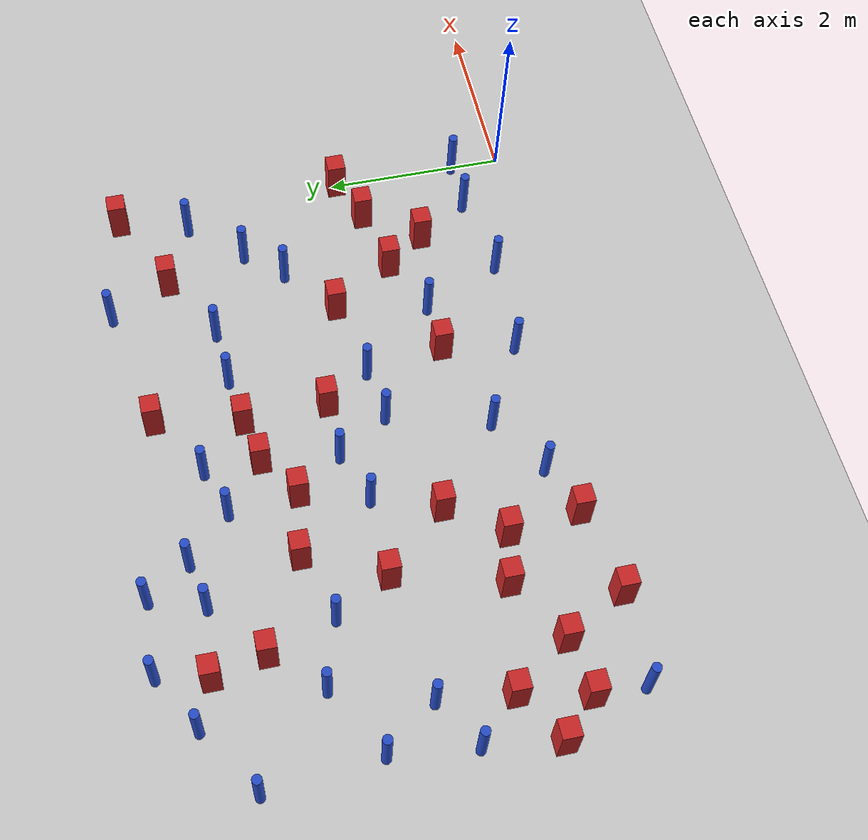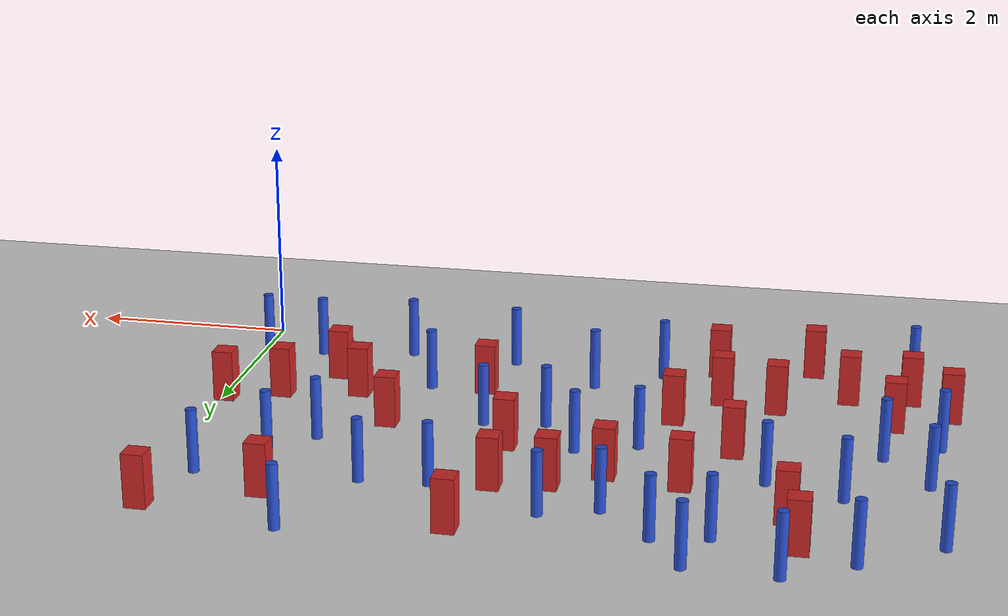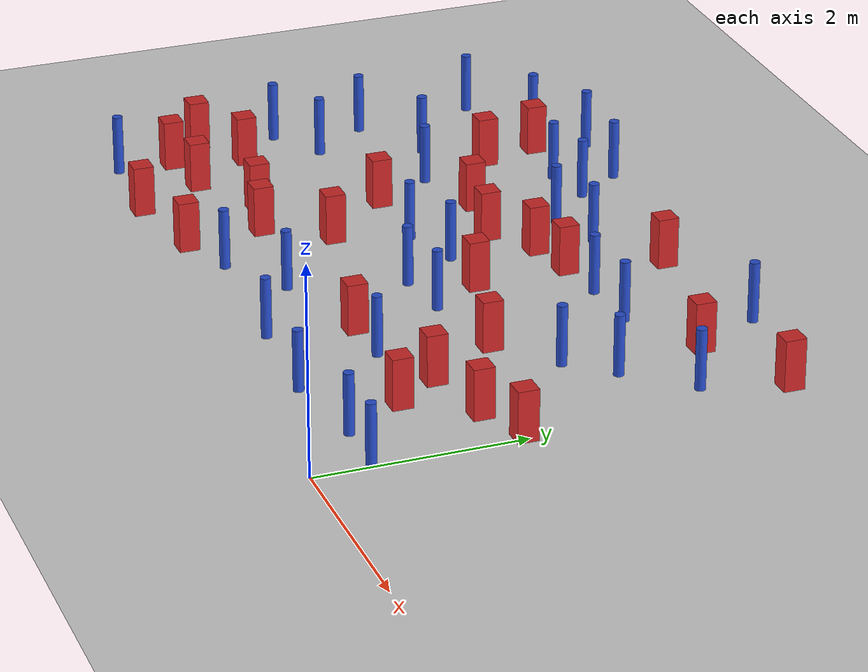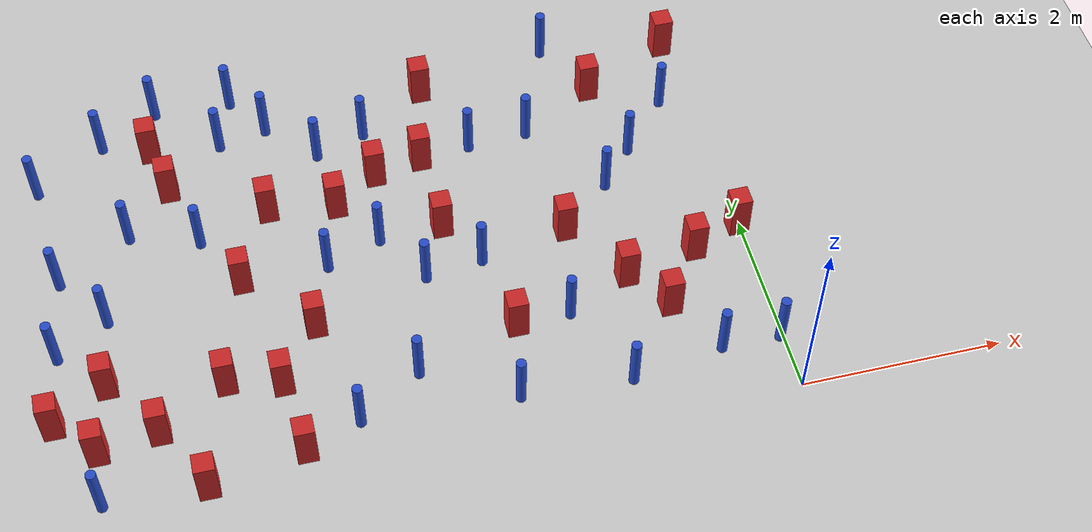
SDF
<sdf version="1.6">
 <world name="default">
  <model name="ground_plane">
   <static>1</static>
   <link name="link">
    <collision name="collision">
     <geometry><plane><normal>0 0 1</normal><size>100 100</size></plane></geometry>
     <surface><friction><ode><mu>100</mu><mu2>50</mu2></ode></friction></surface>
    </collision>
    <visual name="visual">
     <cast_shadows>0</cast_shadows>
     <geometry><plane><normal>0 0 1</normal><size>100 100</size></plane></geometry>
     <material>
      <ambient>1.0 1.0 1.0 1.0</ambient>
      <diffuse>0.8 0.8 0.8 1.0</diffuse>
      <specular>0.01 0.01 0.01 1.000000</specular>
     </material>
    </visual>
   </link>
  </model>
  <model name="square_post_obstacle3">
   <static>true</static>
   <pose>-4.62492804359 3.22909375096 1.91545236811e-07 -7.35059704564e-06 1.12565212e-07 2.39332434364e-05</pose>
   <link name="link">
    <pose>0 0 0.25 0 -0 0</pose>
    <inertial>
     <mass>100</mass>
     <inertia>
      <ixx>0.166667</ixx>
      <ixy>0</ixy>
      <ixz>0</ixz>
      <iyy>0.166667</iyy>
      <iyz>0</iyz>
      <izz>0.166667</izz>
     </inertia>
    </inertial>
    <collision name="collision"><geometry><box><size>.2 .2 .5</size></box></geometry></collision>
    <visual name="visual">
     <geometry><box><size>.2 .2 .5</size></box></geometry>
     <material>
      <script><name>Gazebo/Red</name><uri>file://media/materials/scripts/gazebo.material</uri></script>
     </material>
    </visual>
   </link>
  </model>
  <model name="square_post_obstacle11">
   <static>true</static>
   <pose>-2.98088389689 3.53646595872 1.91545236811e-07 -7.35059704564e-06 1.12565212e-07 2.39332434364e-05</pose>
   <link name="link">
    <pose>0 0 0.25 0 -0 0</pose>
    <inertial>
     <mass>100</mass>
     <inertia>
      <ixx>0.166667</ixx>
      <ixy>0</ixy>
      <ixz>0</ixz>
      <iyy>0.166667</iyy>
      <iyz>0</iyz>
      <izz>0.166667</izz>
     </inertia>
    </inertial>
    <collision name="collision"><geometry><box><size>.2 .2 .5</size></box></geometry></collision>
    <visual name="visual">
     <geometry><box><size>.2 .2 .5</size></box></geometry>
     <material>
      <script><name>Gazebo/Red</name><uri>file://media/materials/scripts/gazebo.material</uri></script>
     </material>
    </visual>
   </link>
  </model>
  <model name="square_post_obstacle15">
   <static>true</static>
   <pose>-2.49304595082 1.27367761904 1.91545236811e-07 -7.35059704564e-06 1.12565212e-07 2.39332434364e-05</pose>
   <link name="link">
    <pose>0 0 0.25 0 -0 0</pose>
    <inertial>
     <mass>100</mass>
     <inertia>
      <ixx>0.166667</ixx>
      <ixy>0</ixy>
      <ixz>0</ixz>
      <iyy>0.166667</iyy>
      <iyz>0</iyz>
      <izz>0.166667</izz>
     </inertia>
    </inertial>
    <collision name="collision"><geometry><box><size>.2 .2 .5</size></box></geometry></collision>
    <visual name="visual">
     <geometry><box><size>.2 .2 .5</size></box></geometry>
     <material>
      <script><name>Gazebo/Red</name><uri>file://media/materials/scripts/gazebo.material</uri></script>
     </material>
    </visual>
   </link>
  </model>
  <model name="square_post_obstacle17">
   <static>true</static>
   <pose>-5.63733042722 0.186093524573 1.91545236811e-07 -7.35059704564e-06 1.12565212e-07 2.39332434364e-05</pose>
   <link name="link">
    <pose>0 0 0.25 0 -0 0</pose>
    <inertial>
     <mass>100</mass>
     <inertia>
      <ixx>0.166667</ixx>
      <ixy>0</ixy>
      <ixz>0</ixz>
      <iyy>0.166667</iyy>
      <iyz>0</iyz>
      <izz>0.166667</izz>
     </inertia>
    </inertial>
    <collision name="collision"><geometry><box><size>.2 .2 .5</size></box></geometry></collision>
    <visual name="visual">
     <geometry><box><size>.2 .2 .5</size></box></geometry>
     <material>
      <script><name>Gazebo/Red</name><uri>file://media/materials/scripts/gazebo.material</uri></script>
     </material>
    </visual>
   </link>
  </model>
  <model name="square_post_obstacle35">
   <static>true</static>
   <pose>-5.32573867616 1.25916689682 1.91545236811e-07 -7.35059704564e-06 1.12565212e-07 2.39332434364e-05</pose>
   <link name="link">
    <pose>0 0 0.25 0 -0 0</pose>
    <inertial>
     <mass>100</mass>
     <inertia>
      <ixx>0.166667</ixx>
      <ixy>0</ixy>
      <ixz>0</ixz>
      <iyy>0.166667</iyy>
      <iyz>0</iyz>
      <izz>0.166667</izz>
     </inertia>
    </inertial>
    <collision name="collision"><geometry><box><size>.2 .2 .5</size></box></geometry></collision>
    <visual name="visual">
     <geometry><box><size>.2 .2 .5</size></box></geometry>
     <material>
      <script><name>Gazebo/Red</name><uri>file://media/materials/scripts/gazebo.material</uri></script>
     </material>
    </visual>
   </link>
  </model>
  <model name="pole_obstacle38">
   <static>true</static>
   <pose>-1.82445074495 3.64887506407 7.38925637345e-09 -8.47170692799e-08 1.24976765053e-08 -1.74513093017e-07</pose>
   <link name="link">
    <pose>0 0 0.3 0 -0 0</pose>
    <inertial>
     <mass>1</mass>
     <inertia><ixx>0.145833</ixx><ixy>0</ixy><ixz>0</ixz><iyy>0.145833</iyy><iyz>0</iyz><izz>0.125</izz></inertia>
    </inertial>
    <collision name="collision">
     <geometry><cylinder><radius>0.05</radius><length>.6</length></cylinder></geometry>
    </collision>
    <visual name="visual">
     <geometry><cylinder><radius>0.05</radius><length>.6</length></cylinder></geometry>
     <material>
      <script><name>Gazebo/Blue</name><uri>file://media/materials/scripts/gazebo.material</uri></script>
     </material>
    </visual>
   </link>
  </model>
  <model name="pole_obstacle44">
   <static>true</static>
   <pose>-6.76797574471 2.81110538442 7.38925637345e-09 -8.47170692798e-08 1.24976764937e-08 -1.74513093023e-07</pose>
   <link name="link">
    <pose>0 0 0.3 0 -0 0</pose>
    <inertial>
     <mass>1</mass>
     <inertia><ixx>0.145833</ixx><ixy>0</ixy><ixz>0</ixz><iyy>0.145833</iyy><iyz>0</iyz><izz>0.125</izz></inertia>
    </inertial>
    <collision name="collision">
     <geometry><cylinder><radius>0.05</radius><length>.6</length></cylinder></geometry>
    </collision>
    <visual name="visual">
     <geometry><cylinder><radius>0.05</radius><length>.6</length></cylinder></geometry>
     <material>
      <script><name>Gazebo/Blue</name><uri>file://media/materials/scripts/gazebo.material</uri></script>
     </material>
    </visual>
   </link>
  </model>
  <model name="pole_obstacle50">
   <static>true</static>
   <pose>-6.35296767061 2.24841668325 7.38925637345e-09 -8.47170692798e-08 1.24976764937e-08 -1.74513093023e-07</pose>
   <link name="link">
    <pose>0 0 0.3 0 -0 0</pose>
    <inertial>
     <mass>1</mass>
     <inertia><ixx>0.145833</ixx><ixy>0</ixy><ixz>0</ixz><iyy>0.145833</iyy><iyz>0</iyz><izz>0.125</izz></inertia>
    </inertial>
    <collision name="collision">
     <geometry><cylinder><radius>0.05</radius><length>.6</length></cylinder></geometry>
    </collision>
    <visual name="visual">
     <geometry><cylinder><radius>0.05</radius><length>.6</length></cylinder></geometry>
     <material>
      <script><name>Gazebo/Blue</name><uri>file://media/materials/scripts/gazebo.material</uri></script>
     </material>
    </visual>
   </link>
  </model>
  <model name="square_post_obstacle53">
   <static>true</static>
   <pose>-3.47829582282 3.43640868993 1.91545236811e-07 -7.35059704564e-06 1.12565212e-07 2.39332434364e-05</pose>
   <link name="link">
    <pose>0 0 0.25 0 -0 0</pose>
    <inertial>
     <mass>100</mass>
     <inertia>
      <ixx>0.166667</ixx>
      <ixy>0</ixy>
      <ixz>0</ixz>
      <iyy>0.166667</iyy>
      <iyz>0</iyz>
      <izz>0.166667</izz>
     </inertia>
    </inertial>
    <collision name="collision"><geometry><box><size>.2 .2 .5</size></box></geometry></collision>
    <visual name="visual">
     <geometry><box><size>.2 .2 .5</size></box></geometry>
     <material>
      <script><name>Gazebo/Red</name><uri>file://media/materials/scripts/gazebo.material</uri></script>
     </material>
    </visual>
   </link>
  </model>
  <model name="square_post_obstacle62">
   <static>true</static>
   <pose>-5.0097895188 2.40401829593 1.91545236811e-07 -7.35059704564e-06 1.12565212e-07 2.39332434364e-05</pose>
   <link name="link">
    <pose>0 0 0.25 0 -0 0</pose>
    <inertial>
     <mass>100</mass>
     <inertia>
      <ixx>0.166667</ixx>
      <ixy>0</ixy>
      <ixz>0</ixz>
      <iyy>0.166667</iyy>
      <iyz>0</iyz>
      <izz>0.166667</izz>
     </inertia>
    </inertial>
    <collision name="collision"><geometry><box><size>.2 .2 .5</size></box></geometry></collision>
    <visual name="visual">
     <geometry><box><size>.2 .2 .5</size></box></geometry>
     <material>
      <script><name>Gazebo/Red</name><uri>file://media/materials/scripts/gazebo.material</uri></script>
     </material>
    </visual>
   </link>
  </model>
  <model name="pole_obstacle65">
   <static>true</static>
   <pose>-6.03494120102 3.22618008085 7.38925637345e-09 -8.47170692798e-08 1.24976764937e-08 -1.74513093023e-07</pose>
   <link name="link">
    <pose>0 0 0.3 0 -0 0</pose>
    <inertial>
     <mass>1</mass>
     <inertia><ixx>0.145833</ixx><ixy>0</ixy><ixz>0</ixz><iyy>0.145833</iyy><iyz>0</iyz><izz>0.125</izz></inertia>
    </inertial>
    <collision name="collision">
     <geometry><cylinder><radius>0.05</radius><length>.6</length></cylinder></geometry>
    </collision>
    <visual name="visual">
     <geometry><cylinder><radius>0.05</radius><length>.6</length></cylinder></geometry>
     <material>
      <script><name>Gazebo/Blue</name><uri>file://media/materials/scripts/gazebo.material</uri></script>
     </material>
    </visual>
   </link>
  </model>
  <model name="pole_obstacle68">
   <static>true</static>
   <pose>-6.884235692 4.02299106368 7.38925637345e-09 -8.47170692797e-08 1.24976764805e-08 -1.74513093031e-07</pose>
   <link name="link">
    <pose>0 0 0.3 0 -0 0</pose>
    <inertial>
     <mass>1</mass>
     <inertia><ixx>0.145833</ixx><ixy>0</ixy><ixz>0</ixz><iyy>0.145833</iyy><iyz>0</iyz><izz>0.125</izz></inertia>
    </inertial>
    <collision name="collision">
     <geometry><cylinder><radius>0.05</radius><length>.6</length></cylinder></geometry>
    </collision>
    <visual name="visual">
     <geometry><cylinder><radius>0.05</radius><length>.6</length></cylinder></geometry>
     <material>
      <script><name>Gazebo/Blue</name><uri>file://media/materials/scripts/gazebo.material</uri></script>
     </material>
    </visual>
   </link>
  </model>
  <model name="pole_obstacle69">
   <static>true</static>
   <pose>-3.49421555318 4.03433408841 7.38925637345e-09 -8.47170692801e-08 1.24976765205e-08 -1.7451309301e-07</pose>
   <link name="link">
    <pose>0 0 0.3 0 -0 0</pose>
    <inertial>
     <mass>1</mass>
     <inertia><ixx>0.145833</ixx><ixy>0</ixy><ixz>0</ixz><iyy>0.145833</iyy><iyz>0</iyz><izz>0.125</izz></inertia>
    </inertial>
    <collision name="collision">
     <geometry><cylinder><radius>0.05</radius><length>.6</length></cylinder></geometry>
    </collision>
    <visual name="visual">
     <geometry><cylinder><radius>0.05</radius><length>.6</length></cylinder></geometry>
     <material>
      <script><name>Gazebo/Blue</name><uri>file://media/materials/scripts/gazebo.material</uri></script>
     </material>
    </visual>
   </link>
  </model>
  <model name="square_post_obstacle76">
   <static>true</static>
   <pose>-6.96361069688 1.15236833687 1.91545236811e-07 -7.35059704564e-06 1.12565212e-07 2.39332434364e-05</pose>
   <link name="link">
    <pose>0 0 0.25 0 -0 0</pose>
    <inertial>
     <mass>100</mass>
     <inertia>
      <ixx>0.166667</ixx>
      <ixy>0</ixy>
      <ixz>0</ixz>
      <iyy>0.166667</iyy>
      <iyz>0</iyz>
      <izz>0.166667</izz>
     </inertia>
    </inertial>
    <collision name="collision"><geometry><box><size>.2 .2 .5</size></box></geometry></collision>
    <visual name="visual">
     <geometry><box><size>.2 .2 .5</size></box></geometry>
     <material>
      <script><name>Gazebo/Red</name><uri>file://media/materials/scripts/gazebo.material</uri></script>
     </material>
    </visual>
   </link>
  </model>
  <model name="pole_obstacle75">
   <static>true</static>
   <pose>-1.54963433581 0.41951503595 7.38925637345e-09 -8.47170692799e-08 1.24976765065e-08 -1.74513093017e-07</pose>
   <link name="link">
    <pose>0 0 0.3 0 -0 0</pose>
    <inertial>
     <mass>1</mass>
     <inertia><ixx>0.145833</ixx><ixy>0</ixy><ixz>0</ixz><iyy>0.145833</iyy><iyz>0</iyz><izz>0.125</izz></inertia>
    </inertial>
    <collision name="collision">
     <geometry><cylinder><radius>0.05</radius><length>.6</length></cylinder></geometry>
    </collision>
    <visual name="visual">
     <geometry><cylinder><radius>0.05</radius><length>.6</length></cylinder></geometry>
     <material>
      <script><name>Gazebo/Blue</name><uri>file://media/materials/scripts/gazebo.material</uri></script>
     </material>
    </visual>
   </link>
  </model>
  <model name="pole_obstacle92">
   <static>true</static>
   <pose>-0.335933696026 3.74530642928 7.38925637345e-09 -8.471706928e-08 1.24976765084e-08 -1.74513093017e-07</pose>
   <link name="link">
    <pose>0 0 0.3 0 -0 0</pose>
    <inertial>
     <mass>1</mass>
     <inertia><ixx>0.145833</ixx><ixy>0</ixy><ixz>0</ixz><iyy>0.145833</iyy><iyz>0</iyz><izz>0.125</izz></inertia>
    </inertial>
    <collision name="collision">
     <geometry><cylinder><radius>0.05</radius><length>.6</length></cylinder></geometry>
    </collision>
    <visual name="visual">
     <geometry><cylinder><radius>0.05</radius><length>.6</length></cylinder></geometry>
     <material>
      <script><name>Gazebo/Blue</name><uri>file://media/materials/scripts/gazebo.material</uri></script>
     </material>
    </visual>
   </link>
  </model>
  <model name="pole_obstacle93">
   <static>true</static>
   <pose>-4.48676143273 4.32895502353 7.38925637345e-09 -8.47170692796e-08 1.24976764786e-08 -1.74513093032e-07</pose>
   <link name="link">
    <pose>0 0 0.3 0 -0 0</pose>
    <inertial>
     <mass>1</mass>
     <inertia><ixx>0.145833</ixx><ixy>0</ixy><ixz>0</ixz><iyy>0.145833</iyy><iyz>0</iyz><izz>0.125</izz></inertia>
    </inertial>
    <collision name="collision">
     <geometry><cylinder><radius>0.05</radius><length>.6</length></cylinder></geometry>
    </collision>
    <visual name="visual">
     <geometry><cylinder><radius>0.05</radius><length>.6</length></cylinder></geometry>
     <material>
      <script><name>Gazebo/Blue</name><uri>file://media/materials/scripts/gazebo.material</uri></script>
     </material>
    </visual>
   </link>
  </model>
  <model name="pole_obstacle94">
   <static>true</static>
   <pose>-0.623005728181 0.570282816844 7.38925637345e-09 -8.47170692799e-08 1.24976765008e-08 -1.7451309302e-07</pose>
   <link name="link">
    <pose>0 0 0.3 0 -0 0</pose>
    <inertial>
     <mass>1</mass>
     <inertia><ixx>0.145833</ixx><ixy>0</ixy><ixz>0</ixz><iyy>0.145833</iyy><iyz>0</iyz><izz>0.125</izz></inertia>
    </inertial>
    <collision name="collision">
     <geometry><cylinder><radius>0.05</radius><length>.6</length></cylinder></geometry>
    </collision>
    <visual name="visual">
     <geometry><cylinder><radius>0.05</radius><length>.6</length></cylinder></geometry>
     <material>
      <script><name>Gazebo/Blue</name><uri>file://media/materials/scripts/gazebo.material</uri></script>
     </material>
    </visual>
   </link>
  </model>
  <model name="square_post_obstacle85">
   <static>true</static>
   <pose>-3.93780901965 3.12097022816 1.91545236811e-07 -7.35059704564e-06 1.12565212e-07 2.39332434364e-05</pose>
   <link name="link">
    <pose>0 0 0.25 0 -0 0</pose>
    <inertial>
     <mass>100</mass>
     <inertia>
      <ixx>0.166667</ixx>
      <ixy>0</ixy>
      <ixz>0</ixz>
      <iyy>0.166667</iyy>
      <iyz>0</iyz>
      <izz>0.166667</izz>
     </inertia>
    </inertial>
    <collision name="collision"><geometry><box><size>.2 .2 .5</size></box></geometry></collision>
    <visual name="visual">
     <geometry><box><size>.2 .2 .5</size></box></geometry>
     <material>
      <script><name>Gazebo/Red</name><uri>file://media/materials/scripts/gazebo.material</uri></script>
     </material>
    </visual>
   </link>
  </model>
  <model name="square_post_obstacle86">
   <static>true</static>
   <pose>-6.58882732517 0.773378130757 1.91545236811e-07 -7.35059704564e-06 1.12565212e-07 2.39332434364e-05</pose>
   <link name="link">
    <pose>0 0 0.25 0 -0 0</pose>
    <inertial>
     <mass>100</mass>
     <inertia>
      <ixx>0.166667</ixx>
      <ixy>0</ixy>
      <ixz>0</ixz>
      <iyy>0.166667</iyy>
      <iyz>0</iyz>
      <izz>0.166667</izz>
     </inertia>
    </inertial>
    <collision name="collision"><geometry><box><size>.2 .2 .5</size></box></geometry></collision>
    <visual name="visual">
     <geometry><box><size>.2 .2 .5</size></box></geometry>
     <material>
      <script><name>Gazebo/Red</name><uri>file://media/materials/scripts/gazebo.material</uri></script>
     </material>
    </visual>
   </link>
  </model>
  <model name="square_post_obstacle90">
   <static>true</static>
   <pose>-6.00078559668 0.860369722355 1.91545236811e-07 -7.35059704564e-06 1.12565212e-07 2.39332434364e-05</pose>
   <link name="link">
    <pose>0 0 0.25 0 -0 0</pose>
    <inertial>
     <mass>100</mass>
     <inertia>
      <ixx>0.166667</ixx>
      <ixy>0</ixy>
      <ixz>0</ixz>
      <iyy>0.166667</iyy>
      <iyz>0</iyz>
      <izz>0.166667</izz>
     </inertia>
    </inertial>
    <collision name="collision"><geometry><box><size>.2 .2 .5</size></box></geometry></collision>
    <visual name="visual">
     <geometry><box><size>.2 .2 .5</size></box></geometry>
     <material>
      <script><name>Gazebo/Red</name><uri>file://media/materials/scripts/gazebo.material</uri></script>
     </material>
    </visual>
   </link>
  </model>
  <model name="pole_obstacle102">
   <static>true</static>
   <pose>-3.58456728659 2.61591122826 7.38925637345e-09 -8.47170692798e-08 1.24976764939e-08 -1.74513093025e-07</pose>
   <link name="link">
    <pose>0 0 0.3 0 -0 0</pose>
    <inertial>
     <mass>1</mass>
     <inertia><ixx>0.145833</ixx><ixy>0</ixy><ixz>0</ixz><iyy>0.145833</iyy><iyz>0</iyz><izz>0.125</izz></inertia>
    </inertial>
    <collision name="collision">
     <geometry><cylinder><radius>0.05</radius><length>.6</length></cylinder></geometry>
    </collision>
    <visual name="visual">
     <geometry><cylinder><radius>0.05</radius><length>.6</length></cylinder></geometry>
     <material>
      <script><name>Gazebo/Blue</name><uri>file://media/materials/scripts/gazebo.material</uri></script>
     </material>
    </visual>
   </link>
  </model>
  <model name="square_post_obstacle92">
   <static>true</static>
   <pose>-4.79912779874 1.12854593184 1.91545236811e-07 -7.35059704564e-06 1.12565212e-07 2.39332434364e-05</pose>
   <link name="link">
    <pose>0 0 0.25 0 -0 0</pose>
    <inertial>
     <mass>100</mass>
     <inertia>
      <ixx>0.166667</ixx>
      <ixy>0</ixy>
      <ixz>0</ixz>
      <iyy>0.166667</iyy>
      <iyz>0</iyz>
      <izz>0.166667</izz>
     </inertia>
    </inertial>
    <collision name="collision"><geometry><box><size>.2 .2 .5</size></box></geometry></collision>
    <visual name="visual">
     <geometry><box><size>.2 .2 .5</size></box></geometry>
     <material>
      <script><name>Gazebo/Red</name><uri>file://media/materials/scripts/gazebo.material</uri></script>
     </material>
    </visual>
   </link>
  </model>
  <model name="pole_obstacle107">
   <static>true</static>
   <pose>-5.34575415679 3.00412244216 7.38925637345e-09 -8.47170692798e-08 1.24976764937e-08 -1.74513093023e-07</pose>
   <link name="link">
    <pose>0 0 0.3 0 -0 0</pose>
    <inertial>
     <mass>1</mass>
     <inertia><ixx>0.145833</ixx><ixy>0</ixy><ixz>0</ixz><iyy>0.145833</iyy><iyz>0</iyz><izz>0.125</izz></inertia>
    </inertial>
    <collision name="collision">
     <geometry><cylinder><radius>0.05</radius><length>.6</length></cylinder></geometry>
    </collision>
    <visual name="visual">
     <geometry><cylinder><radius>0.05</radius><length>.6</length></cylinder></geometry>
     <material>
      <script><name>Gazebo/Blue</name><uri>file://media/materials/scripts/gazebo.material</uri></script>
     </material>
    </visual>
   </link>
  </model>
  <model name="pole_obstacle108">
   <static>true</static>
   <pose>-6.60889995099 0.230705154676 7.38925637345e-09 -8.471706928e-08 1.24976765136e-08 -1.74513093014e-07</pose>
   <link name="link">
    <pose>0 0 0.3 0 -0 0</pose>
    <inertial>
     <mass>1</mass>
     <inertia><ixx>0.145833</ixx><ixy>0</ixy><ixz>0</ixz><iyy>0.145833</iyy><iyz>0</iyz><izz>0.125</izz></inertia>
    </inertial>
    <collision name="collision">
     <geometry><cylinder><radius>0.05</radius><length>.6</length></cylinder></geometry>
    </collision>
    <visual name="visual">
     <geometry><cylinder><radius>0.05</radius><length>.6</length></cylinder></geometry>
     <material>
      <script><name>Gazebo/Blue</name><uri>file://media/materials/scripts/gazebo.material</uri></script>
     </material>
    </visual>
   </link>
  </model>
  <model name="pole_obstacle114">
   <static>true</static>
   <pose>-2.63930970692 2.12998379679 7.38925637345e-09 -8.47170692798e-08 1.24976764939e-08 -1.74513093025e-07</pose>
   <link name="link">
    <pose>0 0 0.3 0 -0 0</pose>
    <inertial>
     <mass>1</mass>
     <inertia><ixx>0.145833</ixx><ixy>0</ixy><ixz>0</ixz><iyy>0.145833</iyy><iyz>0</iyz><izz>0.125</izz></inertia>
    </inertial>
    <collision name="collision">
     <geometry><cylinder><radius>0.05</radius><length>.6</length></cylinder></geometry>
    </collision>
    <visual name="visual">
     <geometry><cylinder><radius>0.05</radius><length>.6</length></cylinder></geometry>
     <material>
      <script><name>Gazebo/Blue</name><uri>file://media/materials/scripts/gazebo.material</uri></script>
     </material>
    </visual>
   </link>
  </model>
  <model name="square_post_obstacle107">
   <static>true</static>
   <pose>-5.69760030067 4.29338982288 1.91545236811e-07 -7.35059704564e-06 1.12565212e-07 2.39332434364e-05</pose>
   <link name="link">
    <pose>0 0 0.25 0 -0 0</pose>
    <inertial>
     <mass>100</mass>
     <inertia>
      <ixx>0.166667</ixx>
      <ixy>0</ixy>
      <ixz>0</ixz>
      <iyy>0.166667</iyy>
      <iyz>0</iyz>
      <izz>0.166667</izz>
     </inertia>
    </inertial>
    <collision name="collision"><geometry><box><size>.2 .2 .5</size></box></geometry></collision>
    <visual name="visual">
     <geometry><box><size>.2 .2 .5</size></box></geometry>
     <material>
      <script><name>Gazebo/Red</name><uri>file://media/materials/scripts/gazebo.material</uri></script>
     </material>
    </visual>
   </link>
  </model>
  <model name="square_post_obstacle108">
   <static>true</static>
   <pose>-4.70631898747 0.355913060879 1.91545236811e-07 -7.35059704564e-06 1.12565212e-07 2.39332434364e-05</pose>
   <link name="link">
    <pose>0 0 0.25 0 -0 0</pose>
    <inertial>
     <mass>100</mass>
     <inertia>
      <ixx>0.166667</ixx>
      <ixy>0</ixy>
      <ixz>0</ixz>
      <iyy>0.166667</iyy>
      <iyz>0</iyz>
      <izz>0.166667</izz>
     </inertia>
    </inertial>
    <collision name="collision"><geometry><box><size>.2 .2 .5</size></box></geometry></collision>
    <visual name="visual">
     <geometry><box><size>.2 .2 .5</size></box></geometry>
     <material>
      <script><name>Gazebo/Red</name><uri>file://media/materials/scripts/gazebo.material</uri></script>
     </material>
    </visual>
   </link>
  </model>
  <model name="pole_obstacle121">
   <static>true</static>
   <pose>-5.59049975866 4.82426379099 7.38925637345e-09 -8.47170692796e-08 1.24976764786e-08 -1.74513093032e-07</pose>
   <link name="link">
    <pose>0 0 0.3 0 -0 0</pose>
    <inertial>
     <mass>1</mass>
     <inertia><ixx>0.145833</ixx><ixy>0</ixy><ixz>0</ixz><iyy>0.145833</iyy><iyz>0</iyz><izz>0.125</izz></inertia>
    </inertial>
    <collision name="collision">
     <geometry><cylinder><radius>0.05</radius><length>.6</length></cylinder></geometry>
    </collision>
    <visual name="visual">
     <geometry><cylinder><radius>0.05</radius><length>.6</length></cylinder></geometry>
     <material>
      <script><name>Gazebo/Blue</name><uri>file://media/materials/scripts/gazebo.material</uri></script>
     </material>
    </visual>
   </link>
  </model>
  <model name="pole_obstacle122">
   <static>true</static>
   <pose>-1.94559965035 1.29628934099 7.38925637345e-09 -8.471706928e-08 1.24976765079e-08 -1.74513093017e-07</pose>
   <link name="link">
    <pose>0 0 0.3 0 -0 0</pose>
    <inertial>
     <mass>1</mass>
     <inertia><ixx>0.145833</ixx><ixy>0</ixy><ixz>0</ixz><iyy>0.145833</iyy><iyz>0</iyz><izz>0.125</izz></inertia>
    </inertial>
    <collision name="collision">
     <geometry><cylinder><radius>0.05</radius><length>.6</length></cylinder></geometry>
    </collision>
    <visual name="visual">
     <geometry><cylinder><radius>0.05</radius><length>.6</length></cylinder></geometry>
     <material>
      <script><name>Gazebo/Blue</name><uri>file://media/materials/scripts/gazebo.material</uri></script>
     </material>
    </visual>
   </link>
  </model>
  <model name="square_post_obstacle113">
   <static>true</static>
   <pose>-0.0370448958904 1.95982716786 1.91545236811e-07 -7.35059704564e-06 1.12565212e-07 2.39332434364e-05</pose>
   <link name="link">
    <pose>0 0 0.25 0 -0 0</pose>
    <inertial>
     <mass>100</mass>
     <inertia>
      <ixx>0.166667</ixx>
      <ixy>0</ixy>
      <ixz>0</ixz>
      <iyy>0.166667</iyy>
      <iyz>0</iyz>
      <izz>0.166667</izz>
     </inertia>
    </inertial>
    <collision name="collision"><geometry><box><size>.2 .2 .5</size></box></geometry></collision>
    <visual name="visual">
     <geometry><box><size>.2 .2 .5</size></box></geometry>
     <material>
      <script><name>Gazebo/Red</name><uri>file://media/materials/scripts/gazebo.material</uri></script>
     </material>
    </visual>
   </link>
  </model>
  <model name="square_post_obstacle116">
   <static>true</static>
   <pose>-0.975593490989 1.15858680436 1.91545236811e-07 -7.35059704564e-06 1.12565212e-07 2.39332434364e-05</pose>
   <link name="link">
    <pose>0 0 0.25 0 -0 0</pose>
    <inertial>
     <mass>100</mass>
     <inertia>
      <ixx>0.166667</ixx>
      <ixy>0</ixy>
      <ixz>0</ixz>
      <iyy>0.166667</iyy>
      <iyz>0</iyz>
      <izz>0.166667</izz>
     </inertia>
    </inertial>
    <collision name="collision"><geometry><box><size>.2 .2 .5</size></box></geometry></collision>
    <visual name="visual">
     <geometry><box><size>.2 .2 .5</size></box></geometry>
     <material>
      <script><name>Gazebo/Red</name><uri>file://media/materials/scripts/gazebo.material</uri></script>
     </material>
    </visual>
   </link>
  </model>
  <model name="pole_obstacle146">
   <static>true</static>
   <pose>-1.19293146168 2.77531575461 7.38925637345e-09 -8.47170692799e-08 1.24976765053e-08 -1.74513093017e-07</pose>
   <link name="link">
    <pose>0 0 0.3 0 -0 0</pose>
    <inertial>
     <mass>1</mass>
     <inertia><ixx>0.145833</ixx><ixy>0</ixy><ixz>0</ixz><iyy>0.145833</iyy><iyz>0</iyz><izz>0.125</izz></inertia>
    </inertial>
    <collision name="collision">
     <geometry><cylinder><radius>0.05</radius><length>.6</length></cylinder></geometry>
    </collision>
    <visual name="visual">
     <geometry><cylinder><radius>0.05</radius><length>.6</length></cylinder></geometry>
     <material>
      <script><name>Gazebo/Blue</name><uri>file://media/materials/scripts/gazebo.material</uri></script>
     </material>
    </visual>
   </link>
  </model>
  <model name="square_post_obstacle140">
   <static>true</static>
   <pose>-2.94587872132 2.6258288913 1.91545236811e-07 -7.35059704564e-06 1.12565212e-07 2.39332434364e-05</pose>
   <link name="link">
    <pose>0 0 0.25 0 -0 0</pose>
    <inertial>
     <mass>100</mass>
     <inertia>
      <ixx>0.166667</ixx>
      <ixy>0</ixy>
      <ixz>0</ixz>
      <iyy>0.166667</iyy>
      <iyz>0</iyz>
      <izz>0.166667</izz>
     </inertia>
    </inertial>
    <collision name="collision"><geometry><box><size>.2 .2 .5</size></box></geometry></collision>
    <visual name="visual">
     <geometry><box><size>.2 .2 .5</size></box></geometry>
     <material>
      <script><name>Gazebo/Red</name><uri>file://media/materials/scripts/gazebo.material</uri></script>
     </material>
    </visual>
   </link>
  </model>
  <model name="pole_obstacle150">
   <static>true</static>
   <pose>-2.44980958588 3.60976430731 7.38925637345e-09 -8.47170692798e-08 1.24976764939e-08 -1.74513093025e-07</pose>
   <link name="link">
    <pose>0 0 0.3 0 -0 0</pose>
    <inertial>
     <mass>1</mass>
     <inertia><ixx>0.145833</ixx><ixy>0</ixy><ixz>0</ixz><iyy>0.145833</iyy><iyz>0</iyz><izz>0.125</izz></inertia>
    </inertial>
    <collision name="collision">
     <geometry><cylinder><radius>0.05</radius><length>.6</length></cylinder></geometry>
    </collision>
    <visual name="visual">
     <geometry><cylinder><radius>0.05</radius><length>.6</length></cylinder></geometry>
     <material>
      <script><name>Gazebo/Blue</name><uri>file://media/materials/scripts/gazebo.material</uri></script>
     </material>
    </visual>
   </link>
  </model>
  <model name="pole_obstacle151">
   <static>true</static>
   <pose>-0.840210895553 3.17965245077 7.38925637345e-09 -8.47170692799e-08 1.2497676509e-08 -1.74513093016e-07</pose>
   <link name="link">
    <pose>0 0 0.3 0 -0 0</pose>
    <inertial>
     <mass>1</mass>
     <inertia><ixx>0.145833</ixx><ixy>0</ixy><ixz>0</ixz><iyy>0.145833</iyy><iyz>0</iyz><izz>0.125</izz></inertia>
    </inertial>
    <collision name="collision">
     <geometry><cylinder><radius>0.05</radius><length>.6</length></cylinder></geometry>
    </collision>
    <visual name="visual">
     <geometry><cylinder><radius>0.05</radius><length>.6</length></cylinder></geometry>
     <material>
      <script><name>Gazebo/Blue</name><uri>file://media/materials/scripts/gazebo.material</uri></script>
     </material>
    </visual>
   </link>
  </model>
  <model name="square_post_obstacle154">
   <static>true</static>
   <pose>-1.29379565399 1.59615307048 1.91545236811e-07 -7.35059704564e-06 1.12565212e-07 2.39332434364e-05</pose>
   <link name="link">
    <pose>0 0 0.25 0 -0 0</pose>
    <inertial>
     <mass>100</mass>
     <inertia>
      <ixx>0.166667</ixx>
      <ixy>0</ixy>
      <ixz>0</ixz>
      <iyy>0.166667</iyy>
      <iyz>0</iyz>
      <izz>0.166667</izz>
     </inertia>
    </inertial>
    <collision name="collision"><geometry><box><size>.2 .2 .5</size></box></geometry></collision>
    <visual name="visual">
     <geometry><box><size>.2 .2 .5</size></box></geometry>
     <material>
      <script><name>Gazebo/Red</name><uri>file://media/materials/scripts/gazebo.material</uri></script>
     </material>
    </visual>
   </link>
  </model>
  <model name="pole_obstacle168">
   <static>true</static>
   <pose>-4.01090480306 3.86071259248 7.38925637345e-09 -8.47170692798e-08 1.24976764953e-08 -1.74513093023e-07</pose>
   <link name="link">
    <pose>0 0 0.3 0 -0 0</pose>
    <inertial>
     <mass>1</mass>
     <inertia><ixx>0.145833</ixx><ixy>0</ixy><ixz>0</ixz><iyy>0.145833</iyy><iyz>0</iyz><izz>0.125</izz></inertia>
    </inertial>
    <collision name="collision">
     <geometry><cylinder><radius>0.05</radius><length>.6</length></cylinder></geometry>
    </collision>
    <visual name="visual">
     <geometry><cylinder><radius>0.05</radius><length>.6</length></cylinder></geometry>
     <material>
      <script><name>Gazebo/Blue</name><uri>file://media/materials/scripts/gazebo.material</uri></script>
     </material>
    </visual>
   </link>
  </model>
  <model name="pole_obstacle173">
   <static>true</static>
   <pose>-4.982437126 4.22362428377 7.38925637345e-09 -8.47170692796e-08 1.24976764786e-08 -1.74513093032e-07</pose>
   <link name="link">
    <pose>0 0 0.3 0 -0 0</pose>
    <inertial>
     <mass>1</mass>
     <inertia><ixx>0.145833</ixx><ixy>0</ixy><ixz>0</ixz><iyy>0.145833</iyy><iyz>0</iyz><izz>0.125</izz></inertia>
    </inertial>
    <collision name="collision">
     <geometry><cylinder><radius>0.05</radius><length>.6</length></cylinder></geometry>
    </collision>
    <visual name="visual">
     <geometry><cylinder><radius>0.05</radius><length>.6</length></cylinder></geometry>
     <material>
      <script><name>Gazebo/Blue</name><uri>file://media/materials/scripts/gazebo.material</uri></script>
     </material>
    </visual>
   </link>
  </model>
  <model name="square_post_obstacle164">
   <static>true</static>
   <pose>-5.57194432773 3.72673182057 1.91545236811e-07 -7.35059704564e-06 1.12565212e-07 2.39332434364e-05</pose>
   <link name="link">
    <pose>0 0 0.25 0 -0 0</pose>
    <inertial>
     <mass>100</mass>
     <inertia>
      <ixx>0.166667</ixx>
      <ixy>0</ixy>
      <ixz>0</ixz>
      <iyy>0.166667</iyy>
      <iyz>0</iyz>
      <izz>0.166667</izz>
     </inertia>
    </inertial>
    <collision name="collision"><geometry><box><size>.2 .2 .5</size></box></geometry></collision>
    <visual name="visual">
     <geometry><box><size>.2 .2 .5</size></box></geometry>
     <material>
      <script><name>Gazebo/Red</name><uri>file://media/materials/scripts/gazebo.material</uri></script>
     </material>
    </visual>
   </link>
  </model>
  <model name="square_post_obstacle167">
   <static>true</static>
   <pose>-1.05281883423 4.0716714792 1.91545236811e-07 -7.35059704564e-06 1.12565212e-07 2.39332434364e-05</pose>
   <link name="link">
    <pose>0 0 0.25 0 -0 0</pose>
    <inertial>
     <mass>100</mass>
     <inertia>
      <ixx>0.166667</ixx>
      <ixy>0</ixy>
      <ixz>0</ixz>
      <iyy>0.166667</iyy>
      <iyz>0</iyz>
      <izz>0.166667</izz>
     </inertia>
    </inertial>
    <collision name="collision"><geometry><box><size>.2 .2 .5</size></box></geometry></collision>
    <visual name="visual">
     <geometry><box><size>.2 .2 .5</size></box></geometry>
     <material>
      <script><name>Gazebo/Red</name><uri>file://media/materials/scripts/gazebo.material</uri></script>
     </material>
    </visual>
   </link>
  </model>
  <model name="pole_obstacle179">
   <static>true</static>
   <pose>-2.64113873085 0.478326886036 7.38925637345e-09 -8.47170692801e-08 1.24976765209e-08 -1.74513093011e-07</pose>
   <link name="link">
    <pose>0 0 0.3 0 -0 0</pose>
    <inertial>
     <mass>1</mass>
     <inertia><ixx>0.145833</ixx><ixy>0</ixy><ixz>0</ixz><iyy>0.145833</iyy><iyz>0</iyz><izz>0.125</izz></inertia>
    </inertial>
    <collision name="collision">
     <geometry><cylinder><radius>0.05</radius><length>.6</length></cylinder></geometry>
    </collision>
    <visual name="visual">
     <geometry><cylinder><radius>0.05</radius><length>.6</length></cylinder></geometry>
     <material>
      <script><name>Gazebo/Blue</name><uri>file://media/materials/scripts/gazebo.material</uri></script>
     </material>
    </visual>
   </link>
  </model>
  <model name="pole_obstacle180">
   <static>true</static>
   <pose>-6.18184130571 4.48273073286 7.38925637345e-09 -8.47170692796e-08 1.24976764786e-08 -1.74513093032e-07</pose>
   <link name="link">
    <pose>0 0 0.3 0 -0 0</pose>
    <inertial>
     <mass>1</mass>
     <inertia><ixx>0.145833</ixx><ixy>0</ixy><ixz>0</ixz><iyy>0.145833</iyy><iyz>0</iyz><izz>0.125</izz></inertia>
    </inertial>
    <collision name="collision">
     <geometry><cylinder><radius>0.05</radius><length>.6</length></cylinder></geometry>
    </collision>
    <visual name="visual">
     <geometry><cylinder><radius>0.05</radius><length>.6</length></cylinder></geometry>
     <material>
      <script><name>Gazebo/Blue</name><uri>file://media/materials/scripts/gazebo.material</uri></script>
     </material>
    </visual>
   </link>
  </model>
  <model name="pole_obstacle181">
   <static>true</static>
   <pose>-4.79839773552 4.7917720855 7.38925637345e-09 -8.47170692796e-08 1.24976764786e-08 -1.74513093032e-07</pose>
   <link name="link">
    <pose>0 0 0.3 0 -0 0</pose>
    <inertial>
     <mass>1</mass>
     <inertia><ixx>0.145833</ixx><ixy>0</ixy><ixz>0</ixz><iyy>0.145833</iyy><iyz>0</iyz><izz>0.125</izz></inertia>
    </inertial>
    <collision name="collision">
     <geometry><cylinder><radius>0.05</radius><length>.6</length></cylinder></geometry>
    </collision>
    <visual name="visual">
     <geometry><cylinder><radius>0.05</radius><length>.6</length></cylinder></geometry>
     <material>
      <script><name>Gazebo/Blue</name><uri>file://media/materials/scripts/gazebo.material</uri></script>
     </material>
    </visual>
   </link>
  </model>
  <model name="square_post_obstacle173">
   <static>true</static>
   <pose>-1.74415646256 2.29629474307 1.91545236811e-07 -7.35059704564e-06 1.12565212e-07 2.39332434364e-05</pose>
   <link name="link">
    <pose>0 0 0.25 0 -0 0</pose>
    <inertial>
     <mass>100</mass>
     <inertia>
      <ixx>0.166667</ixx>
      <ixy>0</ixy>
      <ixz>0</ixz>
      <iyy>0.166667</iyy>
      <iyz>0</iyz>
      <izz>0.166667</izz>
     </inertia>
    </inertial>
    <collision name="collision"><geometry><box><size>.2 .2 .5</size></box></geometry></collision>
    <visual name="visual">
     <geometry><box><size>.2 .2 .5</size></box></geometry>
     <material>
      <script><name>Gazebo/Red</name><uri>file://media/materials/scripts/gazebo.material</uri></script>
     </material>
    </visual>
   </link>
  </model>
  <model name="square_post_obstacle181">
   <static>true</static>
   <pose>-0.110000397983 4.50952592059 1.91545236811e-07 -7.35059704564e-06 1.12565212e-07 2.39332434364e-05</pose>
   <link name="link">
    <pose>0 0 0.25 0 -0 0</pose>
    <inertial>
     <mass>100</mass>
     <inertia>
      <ixx>0.166667</ixx>
      <ixy>0</ixy>
      <ixz>0</ixz>
      <iyy>0.166667</iyy>
      <iyz>0</iyz>
      <izz>0.166667</izz>
     </inertia>
    </inertial>
    <collision name="collision"><geometry><box><size>.2 .2 .5</size></box></geometry></collision>
    <visual name="visual">
     <geometry><box><size>.2 .2 .5</size></box></geometry>
     <material>
      <script><name>Gazebo/Red</name><uri>file://media/materials/scripts/gazebo.material</uri></script>
     </material>
    </visual>
   </link>
  </model>
  <model name="square_post_obstacle184">
   <static>true</static>
   <pose>-2.79677059563 4.46544659524 1.91545236811e-07 -7.35059704564e-06 1.12565212e-07 2.39332434364e-05</pose>
   <link name="link">
    <pose>0 0 0.25 0 -0 0</pose>
    <inertial>
     <mass>100</mass>
     <inertia>
      <ixx>0.166667</ixx>
      <ixy>0</ixy>
      <ixz>0</ixz>
      <iyy>0.166667</iyy>
      <iyz>0</iyz>
      <izz>0.166667</izz>
     </inertia>
    </inertial>
    <collision name="collision"><geometry><box><size>.2 .2 .5</size></box></geometry></collision>
    <visual name="visual">
     <geometry><box><size>.2 .2 .5</size></box></geometry>
     <material>
      <script><name>Gazebo/Red</name><uri>file://media/materials/scripts/gazebo.material</uri></script>
     </material>
    </visual>
   </link>
  </model>
  <model name="square_post_obstacle187">
   <static>true</static>
   <pose>-0.552898766196 1.75386274062 1.91545236811e-07 -7.35059704564e-06 1.12565212e-07 2.39332434364e-05</pose>
   <link name="link">
    <pose>0 0 0.25 0 -0 0</pose>
    <inertial>
     <mass>100</mass>
     <inertia>
      <ixx>0.166667</ixx>
      <ixy>0</ixy>
      <ixz>0</ixz>
      <iyy>0.166667</iyy>
      <iyz>0</iyz>
      <izz>0.166667</izz>
     </inertia>
    </inertial>
    <collision name="collision"><geometry><box><size>.2 .2 .5</size></box></geometry></collision>
    <visual name="visual">
     <geometry><box><size>.2 .2 .5</size></box></geometry>
     <material>
      <script><name>Gazebo/Red</name><uri>file://media/materials/scripts/gazebo.material</uri></script>
     </material>
    </visual>
   </link>
  </model>
  <model name="square_post_obstacle193">
   <static>true</static>
   <pose>-6.4343932544 1.48278819552 1.91545236811e-07 -7.35059704564e-06 1.12565212e-07 2.39332434364e-05</pose>
   <link name="link">
    <pose>0 0 0.25 0 -0 0</pose>
    <inertial>
     <mass>100</mass>
     <inertia>
      <ixx>0.166667</ixx>
      <ixy>0</ixy>
      <ixz>0</ixz>
      <iyy>0.166667</iyy>
      <iyz>0</iyz>
      <izz>0.166667</izz>
     </inertia>
    </inertial>
    <collision name="collision"><geometry><box><size>.2 .2 .5</size></box></geometry></collision>
    <visual name="visual">
     <geometry><box><size>.2 .2 .5</size></box></geometry>
     <material>
      <script><name>Gazebo/Red</name><uri>file://media/materials/scripts/gazebo.material</uri></script>
     </material>
    </visual>
   </link>
  </model>
  <model name="square_post_obstacle203">
   <static>true</static>
   <pose>-4.38890968174 1.71327675578 1.91545236811e-07 -7.35059704564e-06 1.12565212e-07 2.39332434364e-05</pose>
   <link name="link">
    <pose>0 0 0.25 0 -0 0</pose>
    <inertial>
     <mass>100</mass>
     <inertia>
      <ixx>0.166667</ixx>
      <ixy>0</ixy>
      <ixz>0</ixz>
      <iyy>0.166667</iyy>
      <iyz>0</iyz>
      <izz>0.166667</izz>
     </inertia>
    </inertial>
    <collision name="collision"><geometry><box><size>.2 .2 .5</size></box></geometry></collision>
    <visual name="visual">
     <geometry><box><size>.2 .2 .5</size></box></geometry>
     <material>
      <script><name>Gazebo/Red</name><uri>file://media/materials/scripts/gazebo.material</uri></script>
     </material>
    </visual>
   </link>
  </model>
  <model name="pole_obstacle192">
   <static>true</static>
   <pose>-4.1606017223 0.562537965303 7.38925637345e-09 -8.47170692799e-08 1.24976765038e-08 -1.74513093018e-07</pose>
   <link name="link">
    <pose>0 0 0.3 0 -0 0</pose>
    <inertial>
     <mass>1</mass>
     <inertia><ixx>0.145833</ixx><ixy>0</ixy><ixz>0</ixz><iyy>0.145833</iyy><iyz>0</iyz><izz>0.125</izz></inertia>
    </inertial>
    <collision name="collision">
     <geometry><cylinder><radius>0.05</radius><length>.6</length></cylinder></geometry>
    </collision>
    <visual name="visual">
     <geometry><cylinder><radius>0.05</radius><length>.6</length></cylinder></geometry>
     <material>
      <script><name>Gazebo/Blue</name><uri>file://media/materials/scripts/gazebo.material</uri></script>
     </material>
    </visual>
   </link>
  </model>
  <model name="pole_obstacle196">
   <static>true</static>
   <pose>-6.86825127034 1.92921533639 7.38925637345e-09 -8.471706928e-08 1.24976765134e-08 -1.74513093015e-07</pose>
   <link name="link">
    <pose>0 0 0.3 0 -0 0</pose>
    <inertial>
     <mass>1</mass>
     <inertia><ixx>0.145833</ixx><ixy>0</ixy><ixz>0</ixz><iyy>0.145833</iyy><iyz>0</iyz><izz>0.125</izz></inertia>
    </inertial>
    <collision name="collision">
     <geometry><cylinder><radius>0.05</radius><length>.6</length></cylinder></geometry>
    </collision>
    <visual name="visual">
     <geometry><cylinder><radius>0.05</radius><length>.6</length></cylinder></geometry>
     <material>
      <script><name>Gazebo/Blue</name><uri>file://media/materials/scripts/gazebo.material</uri></script>
     </material>
    </visual>
   </link>
  </model>
  <model name="pole_obstacle197">
   <static>true</static>
   <pose>-3.52212814036 0.965900273112 7.38925637345e-09 -8.47170692808e-08 1.24976765581e-08 -1.74513093001e-07</pose>
   <link name="link">
    <pose>0 0 0.3 0 -0 0</pose>
    <inertial>
     <mass>1</mass>
     <inertia><ixx>0.145833</ixx><ixy>0</ixy><ixz>0</ixz><iyy>0.145833</iyy><iyz>0</iyz><izz>0.125</izz></inertia>
    </inertial>
    <collision name="collision">
     <geometry><cylinder><radius>0.05</radius><length>.6</length></cylinder></geometry>
    </collision>
    <visual name="visual">
     <geometry><cylinder><radius>0.05</radius><length>.6</length></cylinder></geometry>
     <material>
      <script><name>Gazebo/Blue</name><uri>file://media/materials/scripts/gazebo.material</uri></script>
     </material>
    </visual>
   </link>
  </model>
  <model name="pole_obstacle200">
   <static>true</static>
   <pose>-0.0390271828245 0.565380476619 7.38925637345e-09 -8.47170692798e-08 1.24976764981e-08 -1.74513093022e-07</pose>
   <link name="link">
    <pose>0 0 0.3 0 -0 0</pose>
    <inertial>
     <mass>1</mass>
     <inertia><ixx>0.145833</ixx><ixy>0</ixy><ixz>0</ixz><iyy>0.145833</iyy><iyz>0</iyz><izz>0.125</izz></inertia>
    </inertial>
    <collision name="collision">
     <geometry><cylinder><radius>0.05</radius><length>.6</length></cylinder></geometry>
    </collision>
    <visual name="visual">
     <geometry><cylinder><radius>0.05</radius><length>.6</length></cylinder></geometry>
     <material>
      <script><name>Gazebo/Blue</name><uri>file://media/materials/scripts/gazebo.material</uri></script>
     </material>
    </visual>
   </link>
  </model>
  <model name="pole_obstacle228">
   <static>true</static>
   <pose>-1.39797999043 4.74318002078 7.38925637345e-09 -8.47170692799e-08 1.24976765033e-08 -1.74513093018e-07</pose>
   <link name="link">
    <pose>0 0 0.3 0 -0 0</pose>
    <inertial>
     <mass>1</mass>
     <inertia><ixx>0.145833</ixx><ixy>0</ixy><ixz>0</ixz><iyy>0.145833</iyy><iyz>0</iyz><izz>0.125</izz></inertia>
    </inertial>
    <collision name="collision">
     <geometry><cylinder><radius>0.05</radius><length>.6</length></cylinder></geometry>
    </collision>
    <visual name="visual">
     <geometry><cylinder><radius>0.05</radius><length>.6</length></cylinder></geometry>
     <material>
      <script><name>Gazebo/Blue</name><uri>file://media/materials/scripts/gazebo.material</uri></script>
     </material>
    </visual>
   </link>
  </model>
  <model name="pole_obstacle234">
   <static>true</static>
   <pose>-4.14880999043 2.40970002078 7.38925637345e-09 -8.47170692798e-08 1.24976764937e-08 -1.74513093023e-07</pose>
   <link name="link">
    <pose>0 0 0.3 0 -0 0</pose>
    <inertial>
     <mass>1</mass>
     <inertia><ixx>0.145833</ixx><ixy>0</ixy><ixz>0</ixz><iyy>0.145833</iyy><iyz>0</iyz><izz>0.125</izz></inertia>
    </inertial>
    <collision name="collision">
     <geometry><cylinder><radius>0.05</radius><length>.6</length></cylinder></geometry>
    </collision>
    <visual name="visual">
     <geometry><cylinder><radius>0.05</radius><length>.6</length></cylinder></geometry>
     <material>
      <script><name>Gazebo/Blue</name><uri>file://media/materials/scripts/gazebo.material</uri></script>
     </material>
    </visual>
   </link>
  </model>
  <model name="pole_obstacle239">
   <static>true</static>
   <pose>-3.22470999043 2.05352002078 7.38925637345e-09 -8.47170692798e-08 1.24976764939e-08 -1.74513093025e-07</pose>
   <link name="link">
    <pose>0 0 0.3 0 -0 0</pose>
    <inertial>
     <mass>1</mass>
     <inertia><ixx>0.145833</ixx><ixy>0</ixy><ixz>0</ixz><iyy>0.145833</iyy><iyz>0</iyz><izz>0.125</izz></inertia>
    </inertial>
    <collision name="collision">
     <geometry><cylinder><radius>0.05</radius><length>.6</length></cylinder></geometry>
    </collision>
    <visual name="visual">
     <geometry><cylinder><radius>0.05</radius><length>.6</length></cylinder></geometry>
     <material>
      <script><name>Gazebo/Blue</name><uri>file://media/materials/scripts/gazebo.material</uri></script>
     </material>
    </visual>
   </link>
  </model>
 </world>
</sdf>
